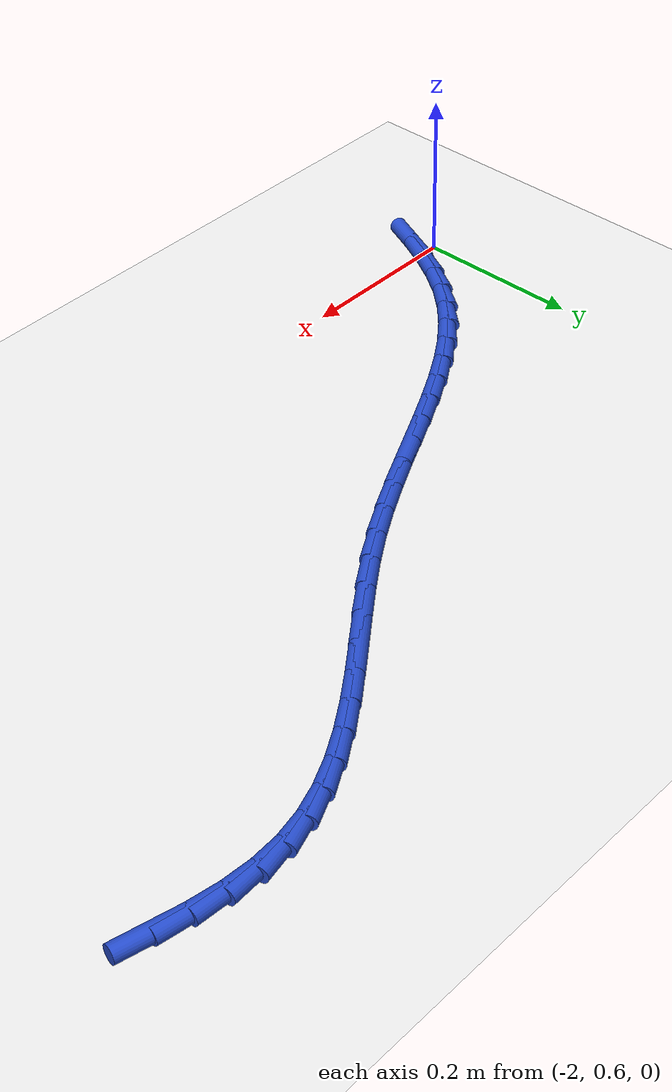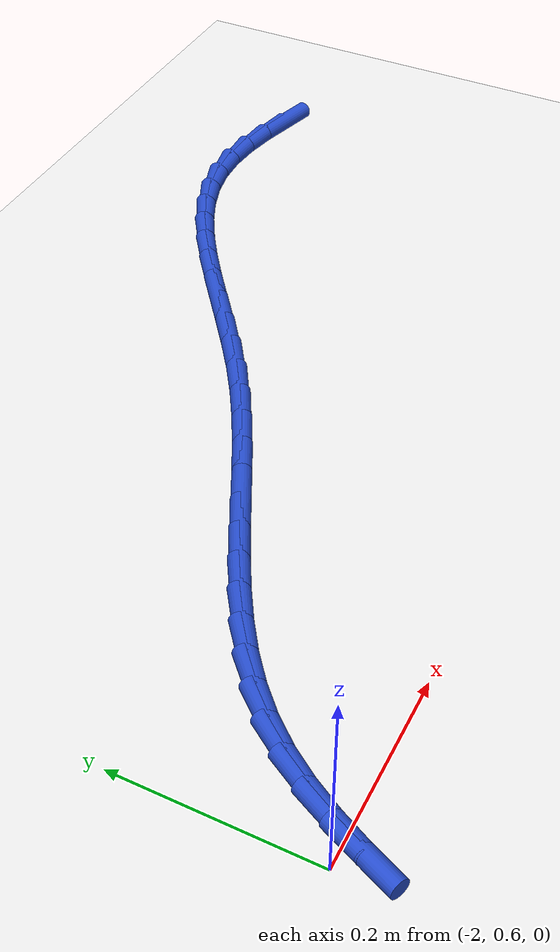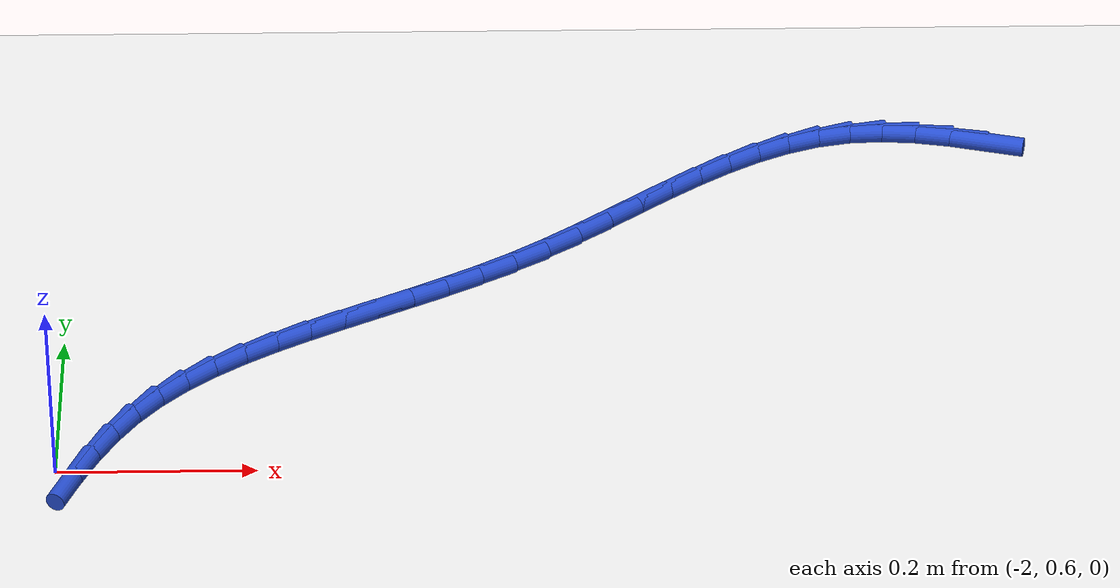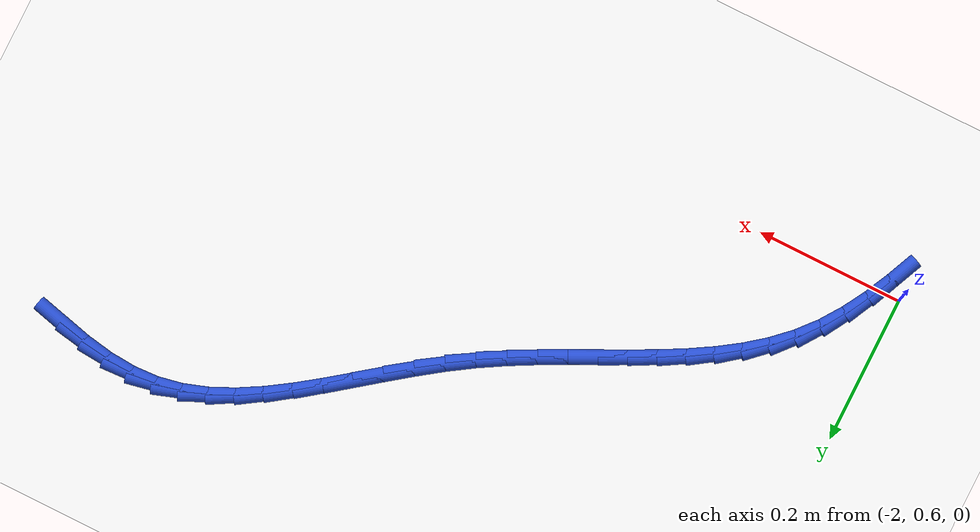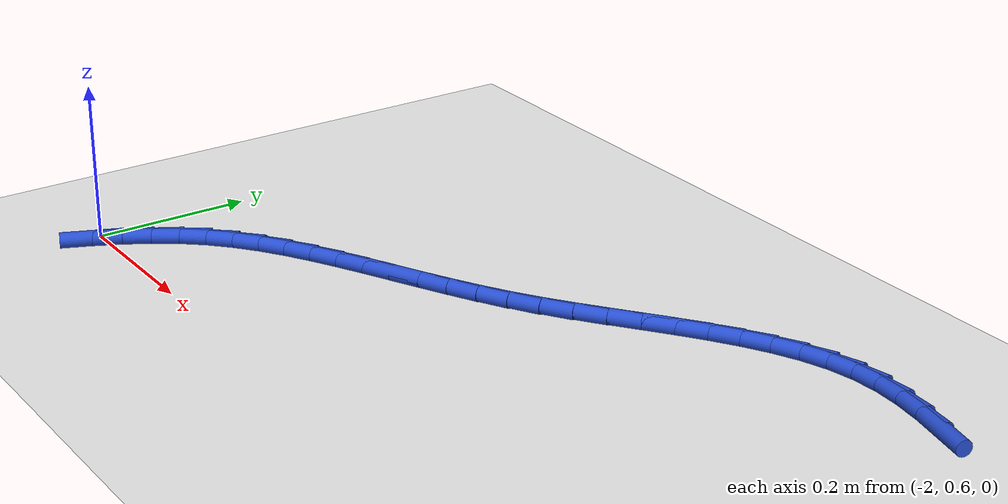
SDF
<sdf version="1.6">
 <world name="default">
  <model name="ground_plane">
   <static>1</static>
   <link name="link">
    <collision name="collision">
     <geometry><plane><normal>0 0 1</normal><size>100 100</size></plane></geometry>
     <surface><friction><ode><mu>100</mu><mu2>50</mu2></ode></friction></surface>
    </collision>
    <visual name="visual">
     <cast_shadows>0</cast_shadows>
     <geometry><plane><normal>0 0 1</normal><size>100 100</size></plane></geometry>
     <material>
      <script><uri>file://media/materials/scripts/gazebo.material</uri><name>Gazebo/WhiteGlow</name></script>
     </material>
    </visual>
   </link>
  </model>
  <model name="line">
   <link name="link_44">
    <pose>-1.0463851359029452 1.1088285447448425 0.01 0 1.57 -0.242912685368722</pose>
    <collision name="collision">
     <geometry><cylinder><radius>0.01</radius><length>0.08</length></cylinder></geometry>
    </collision>
    <visual name="visual">
     <material>
      <script><name>Gazebo/Blue</name><uri>file://media/materials/scripts/gazebo.material</uri></script>
     </material>
     <geometry><cylinder><radius>0.01</radius><length>0.08</length></cylinder></geometry>
    </visual>
   </link>
   <link name="link_45">
    <pose>-1.0832521162786735 1.1179644047413402 0.01 0 1.57 -0.17173261437466977</pose>
    <collision name="collision">
     <geometry><cylinder><radius>0.01</radius><length>0.08</length></cylinder></geometry>
    </collision>
    <visual name="visual">
     <material>
      <script><name>Gazebo/Blue</name><uri>file://media/materials/scripts/gazebo.material</uri></script>
     </material>
     <geometry><cylinder><radius>0.01</radius><length>0.08</length></cylinder></geometry>
    </visual>
   </link>
   <link name="link_46">
    <pose>-1.1195876006634353 1.124266468298991 0.01 0 1.57 -0.07479717048199354</pose>
    <collision name="collision">
     <geometry><cylinder><radius>0.01</radius><length>0.08</length></cylinder></geometry>
    </collision>
    <visual name="visual">
     <material>
      <script><name>Gazebo/Blue</name><uri>file://media/materials/scripts/gazebo.material</uri></script>
     </material>
     <geometry><cylinder><radius>0.01</radius><length>0.08</length></cylinder></geometry>
    </visual>
   </link>
   <link name="link_47">
    <pose>-1.1552230983576937 1.1269368845387442 0.01 0 1.57 0.05055013611710461</pose>
    <collision name="collision">
     <geometry><cylinder><radius>0.01</radius><length>0.08</length></cylinder></geometry>
    </collision>
    <visual name="visual">
     <material>
      <script><name>Gazebo/Blue</name><uri>file://media/materials/scripts/gazebo.material</uri></script>
     </material>
     <geometry><cylinder><radius>0.01</radius><length>0.08</length></cylinder></geometry>
    </visual>
   </link>
   <link name="link_48">
    <pose>-1.1899901438676448 1.125177907152692 0.01 0 1.57 0.19527162372627327</pose>
    <collision name="collision">
     <geometry><cylinder><radius>0.01</radius><length>0.08</length></cylinder></geometry>
    </collision>
    <visual name="visual">
     <material>
      <script><name>Gazebo/Blue</name><uri>file://media/materials/scripts/gazebo.material</uri></script>
     </material>
     <geometry><cylinder><radius>0.01</radius><length>0.08</length></cylinder></geometry>
    </visual>
   </link>
   <link name="link_49">
    <pose>-1.2237926441244469 1.1184920416351813 0.01 0 1.57 0.3261358950479793</pose>
    <collision name="collision">
     <geometry><cylinder><radius>0.01</radius><length>0.08</length></cylinder></geometry>
    </collision>
    <visual name="visual">
     <material>
      <script><name>Gazebo/Blue</name><uri>file://media/materials/scripts/gazebo.material</uri></script>
     </material>
     <geometry><cylinder><radius>0.01</radius><length>0.08</length></cylinder></geometry>
    </visual>
   </link>
   <link name="link_50">
    <pose>-1.256765515781614 1.1073401845461448 0.01 0 1.57 0.4336134931897716</pose>
    <collision name="collision">
     <geometry><cylinder><radius>0.01</radius><length>0.08</length></cylinder></geometry>
    </collision>
    <visual name="visual">
     <material>
      <script><name>Gazebo/Blue</name><uri>file://media/materials/scripts/gazebo.material</uri></script>
     </material>
     <geometry><cylinder><radius>0.01</radius><length>0.08</length></cylinder></geometry>
    </visual>
   </link>
   <link name="link_51">
    <pose>-1.289089668225055 1.0923740426995454 0.01 0 1.57 0.5173717828774678</pose>
    <collision name="collision">
     <geometry><cylinder><radius>0.01</radius><length>0.08</length></cylinder></geometry>
    </collision>
    <visual name="visual">
     <material>
      <script><name>Gazebo/Blue</name><uri>file://media/materials/scripts/gazebo.material</uri></script>
     </material>
     <geometry><cylinder><radius>0.01</radius><length>0.08</length></cylinder></geometry>
    </visual>
   </link>
   <link name="link_52">
    <pose>-1.3209460108406779 1.0742453229093474 0.01 0 1.57 0.5790306114568059</pose>
    <collision name="collision">
     <geometry><cylinder><radius>0.01</radius><length>0.08</length></cylinder></geometry>
    </collision>
    <visual name="visual">
     <material>
      <script><name>Gazebo/Blue</name><uri>file://media/materials/scripts/gazebo.material</uri></script>
     </material>
     <geometry><cylinder><radius>0.01</radius><length>0.08</length></cylinder></geometry>
    </visual>
   </link>
   <link name="link_53">
    <pose>-1.3525154530143901 1.0536057319895147 0.01 0 1.57 0.6207725133455624</pose>
    <collision name="collision">
     <geometry><cylinder><radius>0.01</radius><length>0.08</length></cylinder></geometry>
    </collision>
    <visual name="visual">
     <material>
      <script><name>Gazebo/Blue</name><uri>file://media/materials/scripts/gazebo.material</uri></script>
     </material>
     <geometry><cylinder><radius>0.01</radius><length>0.08</length></cylinder></geometry>
    </visual>
   </link>
   <link name="link_54">
    <pose>-1.3839789041320998 1.0311069767540115 0.01 0 1.57 0.6445643230539471</pose>
    <collision name="collision">
     <geometry><cylinder><radius>0.01</radius><length>0.08</length></cylinder></geometry>
    </collision>
    <visual name="visual">
     <material>
      <script><name>Gazebo/Blue</name><uri>file://media/materials/scripts/gazebo.material</uri></script>
     </material>
     <geometry><cylinder><radius>0.01</radius><length>0.08</length></cylinder></geometry>
    </visual>
   </link>
   <link name="link_55">
    <pose>-1.415517273579715 1.0074007640168008 0.01 0 1.57 0.6518287813514151</pose>
    <collision name="collision">
     <geometry><cylinder><radius>0.01</radius><length>0.08</length></cylinder></geometry>
    </collision>
    <visual name="visual">
     <material>
      <script><name>Gazebo/Blue</name><uri>file://media/materials/scripts/gazebo.material</uri></script>
     </material>
     <geometry><cylinder><radius>0.01</radius><length>0.08</length></cylinder></geometry>
    </visual>
   </link>
   <link name="link_56">
    <pose>-1.4473114707431436 0.983138800591848 0.01 0 1.57 0.6433582563006961</pose>
    <collision name="collision">
     <geometry><cylinder><radius>0.01</radius><length>0.08</length></cylinder></geometry>
    </collision>
    <visual name="visual">
     <material>
      <script><name>Gazebo/Blue</name><uri>file://media/materials/scripts/gazebo.material</uri></script>
     </material>
     <geometry><cylinder><radius>0.01</radius><length>0.08</length></cylinder></geometry>
    </visual>
   </link>
   <link name="link_57">
    <pose>-1.4795424050082941 0.9589727932931161 0.01 0 1.57 0.619343248630212</pose>
    <collision name="collision">
     <geometry><cylinder><radius>0.01</radius><length>0.08</length></cylinder></geometry>
    </collision>
    <visual name="visual">
     <material>
      <script><name>Gazebo/Blue</name><uri>file://media/materials/scripts/gazebo.material</uri></script>
     </material>
     <geometry><cylinder><radius>0.01</radius><length>0.08</length></cylinder></geometry>
    </visual>
   </link>
   <link name="link_58">
    <pose>-1.5123909857610744 0.9355544489345692 0.01 0 1.57 0.5795523622698867</pose>
    <collision name="collision">
     <geometry><cylinder><radius>0.01</radius><length>0.08</length></cylinder></geometry>
    </collision>
    <visual name="visual">
     <material>
      <script><name>Gazebo/Blue</name><uri>file://media/materials/scripts/gazebo.material</uri></script>
     </material>
     <geometry><cylinder><radius>0.01</radius><length>0.08</length></cylinder></geometry>
    </visual>
   </link>
   <link name="link_59">
    <pose>-1.54603665686944 0.9135323864492655 0.01 0 1.57 0.532619440617861</pose>
    <collision name="collision">
     <geometry><cylinder><radius>0.01</radius><length>0.08</length></cylinder></geometry>
    </collision>
    <visual name="visual">
     <material>
      <script><name>Gazebo/Blue</name><uri>file://media/materials/scripts/gazebo.material</uri></script>
     </material>
     <geometry><cylinder><radius>0.01</radius><length>0.08</length></cylinder></geometry>
    </visual>
   </link>
   <link name="link_60">
    <pose>-1.5804991753977038 0.8932187609069488 0.01 0 1.57 0.49576252603368226</pose>
    <collision name="collision">
     <geometry><cylinder><radius>0.01</radius><length>0.08</length></cylinder></geometry>
    </collision>
    <visual name="visual">
     <material>
      <script><name>Gazebo/Blue</name><uri>file://media/materials/scripts/gazebo.material</uri></script>
     </material>
     <geometry><cylinder><radius>0.01</radius><length>0.08</length></cylinder></geometry>
    </visual>
   </link>
   <link name="link_61">
    <pose>-1.6154972253749693 0.874291359387935 0.01 0 1.57 0.4709852755989723</pose>
    <collision name="collision">
     <geometry><cylinder><radius>0.01</radius><length>0.08</length></cylinder></geometry>
    </collision>
    <visual name="visual">
     <material>
      <script><name>Gazebo/Blue</name><uri>file://media/materials/scripts/gazebo.material</uri></script>
     </material>
     <geometry><cylinder><radius>0.01</radius><length>0.08</length></cylinder></geometry>
    </visual>
   </link>
   <link name="link_62">
    <pose>-1.6507161315610732 0.8563576802050316 0.01 0 1.57 0.45839353250777737</pose>
    <collision name="collision">
     <geometry><cylinder><radius>0.01</radius><length>0.08</length></cylinder></geometry>
    </collision>
    <visual name="visual">
     <material>
      <script><name>Gazebo/Blue</name><uri>file://media/materials/scripts/gazebo.material</uri></script>
     </material>
     <geometry><cylinder><radius>0.01</radius><length>0.08</length></cylinder></geometry>
    </visual>
   </link>
   <link name="link_63">
    <pose>-1.685841218715853 0.8390252216710464 0.01 0 1.57 0.4582279485417565</pose>
    <collision name="collision">
     <geometry><cylinder><radius>0.01</radius><length>0.08</length></cylinder></geometry>
    </collision>
    <visual name="visual">
     <material>
      <script><name>Gazebo/Blue</name><uri>file://media/materials/scripts/gazebo.material</uri></script>
     </material>
     <geometry><cylinder><radius>0.01</radius><length>0.08</length></cylinder></geometry>
    </visual>
   </link>
   <link name="link_64">
    <pose>-1.7205578115991433 0.821901482098788 0.01 0 1.57 0.47093543146204925</pose>
    <collision name="collision">
     <geometry><cylinder><radius>0.01</radius><length>0.08</length></cylinder></geometry>
    </collision>
    <visual name="visual">
     <material>
      <script><name>Gazebo/Blue</name><uri>file://media/materials/scripts/gazebo.material</uri></script>
     </material>
     <geometry><cylinder><radius>0.01</radius><length>0.08</length></cylinder></geometry>
    </visual>
   </link>
   <link name="link_65">
    <pose>-1.7545512349707815 0.8045939598010642 0.01 0 1.57 0.49719353786730586</pose>
    <collision name="collision">
     <geometry><cylinder><radius>0.01</radius><length>0.08</length></cylinder></geometry>
    </collision>
    <visual name="visual">
     <material>
      <script><name>Gazebo/Blue</name><uri>file://media/materials/scripts/gazebo.material</uri></script>
     </material>
     <geometry><cylinder><radius>0.01</radius><length>0.08</length></cylinder></geometry>
    </visual>
   </link>
   <link name="link_66">
    <pose>-1.787506813590604 0.7867101530906826 0.01 0 1.57 0.5378739308355532</pose>
    <collision name="collision">
     <geometry><cylinder><radius>0.01</radius><length>0.08</length></cylinder></geometry>
    </collision>
    <visual name="visual">
     <material>
      <script><name>Gazebo/Blue</name><uri>file://media/materials/scripts/gazebo.material</uri></script>
     </material>
     <geometry><cylinder><radius>0.01</radius><length>0.08</length></cylinder></geometry>
    </visual>
   </link>
   <link name="link_67">
    <pose>-1.8191098722184462 0.7678575602804519 0.01 0 1.57 0.5939142552099661</pose>
    <collision name="collision">
     <geometry><cylinder><radius>0.01</radius><length>0.08</length></cylinder></geometry>
    </collision>
    <visual name="visual">
     <material>
      <script><name>Gazebo/Blue</name><uri>file://media/materials/scripts/gazebo.material</uri></script>
     </material>
     <geometry><cylinder><radius>0.01</radius><length>0.08</length></cylinder></geometry>
    </visual>
   </link>
   <link name="link_68">
    <pose>-1.849045735614145 0.7476436796831796 0.01 0 1.57 0.6660536904923708</pose>
    <collision name="collision">
     <geometry><cylinder><radius>0.01</radius><length>0.08</length></cylinder></geometry>
    </collision>
    <visual name="visual">
     <material>
      <script><name>Gazebo/Blue</name><uri>file://media/materials/scripts/gazebo.material</uri></script>
     </material>
     <geometry><cylinder><radius>0.01</radius><length>0.08</length></cylinder></geometry>
    </visual>
   </link>
   <link name="link_69">
    <pose>-1.876999728537537 0.7256760096116738 0.01 0 1.57 0.7543966001571656</pose>
    <collision name="collision">
     <geometry><cylinder><radius>0.01</radius><length>0.08</length></cylinder></geometry>
    </collision>
    <visual name="visual">
     <material>
      <script><name>Gazebo/Blue</name><uri>file://media/materials/scripts/gazebo.material</uri></script>
     </material>
     <geometry><cylinder><radius>0.01</radius><length>0.08</length></cylinder></geometry>
    </visual>
   </link>
   <link name="link_70">
    <pose>-1.9026571757484587 0.7015620483787428 0.01 0 1.57 0.8575896992110907</pose>
    <collision name="collision">
     <geometry><cylinder><radius>0.01</radius><length>0.08</length></cylinder></geometry>
    </collision>
    <visual name="visual">
     <material>
      <script><name>Gazebo/Blue</name><uri>file://media/materials/scripts/gazebo.material</uri></script>
     </material>
     <geometry><cylinder><radius>0.01</radius><length>0.08</length></cylinder></geometry>
    </visual>
   </link>
   <link name="link_71">
    <pose>-1.9257095980576204 0.674915537944913 0.01 0 1.57 0.9611003623769234</pose>
    <collision name="collision">
     <geometry><cylinder><radius>0.01</radius><length>0.08</length></cylinder></geometry>
    </collision>
    <visual name="visual">
     <material>
      <script><name>Gazebo/Blue</name><uri>file://media/materials/scripts/gazebo.material</uri></script>
     </material>
     <geometry><cylinder><radius>0.01</radius><length>0.08</length></cylinder></geometry>
    </visual>
   </link>
   <link name="link_72">
    <pose>-1.9461487001970428 0.645652710145892 0.01 0 1.57 1.046221841648937</pose>
    <collision name="collision">
     <geometry><cylinder><radius>0.01</radius><length>0.08</length></cylinder></geometry>
    </collision>
    <visual name="visual">
     <material>
      <script><name>Gazebo/Blue</name><uri>file://media/materials/scripts/gazebo.material</uri></script>
     </material>
     <geometry><cylinder><radius>0.01</radius><length>0.08</length></cylinder></geometry>
    </visual>
   </link>
   <link name="link_73">
    <pose>-1.9643944078938174 0.6141213073219528 0.01 0 1.57 1.112056601688501</pose>
    <collision name="collision">
     <geometry><cylinder><radius>0.01</radius><length>0.08</length></cylinder></geometry>
    </collision>
    <visual name="visual">
     <material>
      <script><name>Gazebo/Blue</name><uri>file://media/materials/scripts/gazebo.material</uri></script>
     </material>
     <geometry><cylinder><radius>0.01</radius><length>0.08</length></cylinder></geometry>
    </visual>
   </link>
   <link name="link_74">
    <pose>-1.9808994677024254 0.5807021447639038 0.01 0 1.57 1.1599012246335134</pose>
    <collision name="collision">
     <geometry><cylinder><radius>0.01</radius><length>0.08</length></cylinder></geometry>
    </collision>
    <visual name="visual">
     <material>
      <script><name>Gazebo/Blue</name><uri>file://media/materials/scripts/gazebo.material</uri></script>
     </material>
     <geometry><cylinder><radius>0.01</radius><length>0.08</length></cylinder></geometry>
    </visual>
   </link>
  </model>
 </world>
</sdf>
